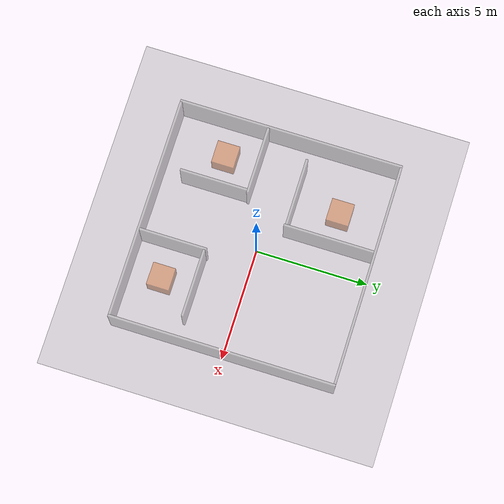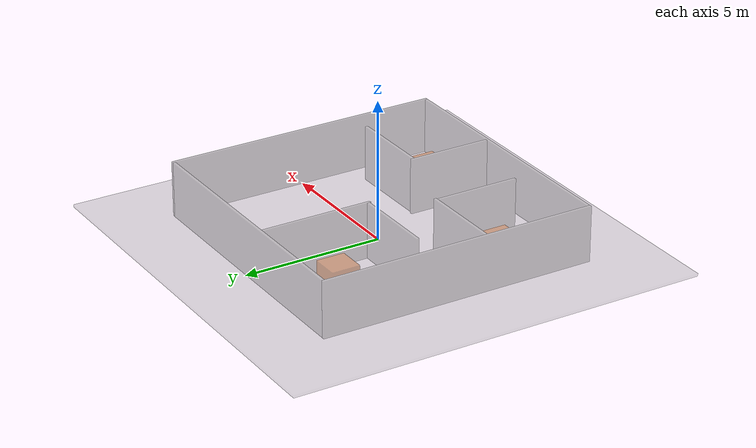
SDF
<?xml version="1.0" ?>
<sdf version="1.10">
  <world name="robot_haus">

    <gravity>0 0 -9.81</gravity>

    <light name="sun" type="directional">
      <pose>0 0 10 0 0 0</pose>
      <diffuse>1 1 1 1</diffuse>
      <specular>1 1 1 1</specular>
      <attenuation>
        <range>1000</range>
        <constant>0.5</constant>
        <linear>0.05</linear>
        <quadratic>0.002</quadratic>
      </attenuation>
    </light>
    <model name="floor">
      <pose>0 0 0 0 0 0</pose>
      <static>true</static>
      <link name="link">
        <collision name="collision">
          <geometry>
            <box>
              <size>15 15 0.1</size>
            </box>
          </geometry>
        </collision>
        <visual name="visual">
          <geometry>
            <box>
              <size>15 15 0.1</size>
            </box>
          </geometry>
          <material>
            <ambient>0.2 0.2 0.2 0.2</ambient>
            <diffuse>0.2 0.2 0.2 0.2</diffuse>
            <specular>0.2 0.2 0.2 0.1</specular>
          </material>
        </visual>
      </link>
    </model>

    <model name="wall1">
      <pose>4.95 0 1.05 0 0 0</pose>
      <link name="link">
        <collision name="collision">
          <geometry>
            <box>
              <size>0.1 10 2</size>
            </box>
          </geometry>
        </collision>
        <visual name="visual">
          <geometry>
            <box>
              <size>0.1 10 2</size>
            </box>
          </geometry>
          <material>
            <ambient>0.5 0.5 0.5 0.5</ambient>
            <diffuse>0.5 0.5 0.5 0.5</diffuse>
            <specular>0.2 0.2 0.2 0.5</specular>
          </material>
        </visual>
      </link>
    </model>

    <model name="wall2">
      <pose>-4.95 0 1.05 0 0 0</pose>
      <link name="link">
        <collision name="collision">
          <geometry>
            <box>
              <size>0.1 10 2</size>
            </box>
          </geometry>
        </collision>
        <visual name="visual">
          <geometry>
            <box>
              <size>0.1 10 2</size>
            </box>
          </geometry>
          <material>
            <ambient>0.5 0.5 0.5 0.5</ambient>
            <diffuse>0.5 0.5 0.5 0.5</diffuse>
            <specular>0.2 0.2 0.2 0.5</specular>
          </material>
        </visual>
      </link>
    </model>
    <model name="wall3">
      <pose>0 4.95 1.05 0 0 0</pose>
      <link name="link">
        <collision name="collision">
          <geometry>
            <box>
              <size>9.8 0.1 2</size>
            </box>
          </geometry>
        </collision>
        <visual name="visual">
          <geometry>
            <box>
              <size>9.8 0.1 2</size>
            </box>
          </geometry>
          <material>
            <ambient>0.5 0.5 0.5 0.5</ambient>
            <diffuse>0.5 0.5 0.5 0.5</diffuse>
            <specular>0.2 0.2 0.2 0.5</specular>
          </material>
        </visual>
      </link>
    </model>
    <model name="wall4">
      <pose>0 -4.95 1.05 0 0 0</pose>
      <link name="link">
        <collision name="collision">
          <geometry>
            <box>
              <size>9.8 0.1 2</size>
            </box>
          </geometry>
        </collision>
        <visual name="visual">
          <geometry>
            <box>
              <size>9.8 0.1 2</size>
            </box>
          </geometry>
          <material>
            <ambient>0.5 0.5 0.5 0.5</ambient>
            <diffuse>0.5 0.5 0.5 0.5</diffuse>
            <specular>0.2 0.2 0.2 0.5</specular>
          </material>
        </visual>
      </link>
    </model>
    <model name="wall5">
      <pose>-2.55 1 1.05 0 0 0</pose>
      <link name="link">
        <collision name="collision">
          <geometry>
            <box>
              <size>3 0.1 2</size>
            </box>
          </geometry>
        </collision>
        <visual name="visual">
          <geometry>
            <box>
              <size>3 0.1 2</size>
            </box>
          </geometry>
          <material>
            <ambient>0.5 0.5 0.5 0.5</ambient>
            <diffuse>0.5 0.5 0.5 0.5</diffuse>
            <specular>0.2 0.2 0.2 0.5</specular>
          </material>
        </visual>
      </link>
    </model>
    <model name="wall6">
      <pose>-1 2.90 1.05 0 0 0</pose>
      <link name="link">
        <collision name="collision">
          <geometry>
            <box>
              <size>0.1 4 2</size>
            </box>
          </geometry>
        </collision>
        <visual name="visual">
          <geometry>
            <box>
              <size>0.1 4 2</size>
            </box>
          </geometry>
          <material>
            <ambient>0.5 0.5 0.5 0.5</ambient>
            <diffuse>0.5 0.5 0.5 0.5</diffuse>
            <specular>0.2 0.2 0.2 0.5</specular>
          </material>
        </visual>
      </link>
    </model>
    <model name="wall7">
      <pose>-3.40 -1 1.05 0 0 0</pose>
      <link name="link">
        <collision name="collision">
          <geometry>
            <box>
              <size>3 0.1 2</size>
            </box>
          </geometry>
        </collision>
        <visual name="visual">
          <geometry>
            <box>
              <size>3 0.1 2</size>
            </box>
          </geometry>
          <material>
            <ambient>0.5 0.5 0.5 0.5</ambient>
            <diffuse>0.5 0.5 0.5 0.5</diffuse>
            <specular>0.2 0.2 0.2 0.5</specular>
          </material>
        </visual>
      </link>
    </model>
    <model name="wall8">
      <pose>-2 -2.55 1.05 0 0 0</pose>
      <link name="link">
        <collision name="collision">
          <geometry>
            <box>
              <size>0.1 3 2</size>
            </box>
          </geometry>
        </collision>
        <visual name="visual">
          <geometry>
            <box>
              <size>0.1 3 2</size>
            </box>
          </geometry>
          <material>
            <ambient>0.5 0.5 0.5 0.5</ambient>
            <diffuse>0.5 0.5 0.5 0.5</diffuse>
            <specular>0.2 0.2 0.2 0.5</specular>
          </material>
        </visual>
      </link>
    </model>
    <model name="wall9">
      <pose>1 -3.40 1.05 0 0 0</pose>
      <link name="link">
        <collision name="collision">
          <geometry>
            <box>
              <size>0.1 3 2</size>
            </box>
          </geometry>
        </collision>
        <visual name="visual">
          <geometry>
            <box>
              <size>0.1 3 2</size>
            </box>
          </geometry>
          <material>
            <ambient>0.5 0.5 0.5 0.5</ambient>
            <diffuse>0.5 0.5 0.5 0.5</diffuse>
            <specular>0.2 0.2 0.2 0.5</specular>
          </material>
        </visual>
      </link>
    </model>
    <model name="wall10">
     <static>true</static>
      <pose>2.55 -2 1.05 0 0 0</pose>
      <link name="link">
        <collision name="collision">
          <geometry>
            <box>
              <size>3 0.1 2</size>
            </box>
          </geometry>
        </collision>
        <visual name="visual">
          <geometry>
            <box>
              <size>3 0.1 2</size>
            </box>
          </geometry>
          <material>
            <ambient>0.5 0.5 0.5 0.5</ambient>
            <diffuse>0.5 0.5 0.5 0.5</diffuse>
            <specular>0.2 0.2 0.2 0.5</specular>
          </material>
        </visual>
      </link>
    </model>

    <model name="obstacle1">
      <pose>-2.5 3 0.55 0 0 0</pose>
      <static>true</static>
      <link name="link">
        <collision name="collision">
          <geometry>
            <box>
              <size>1 1 1</size>
            </box>
          </geometry>
        </collision>
        <visual name="visual">
          <geometry>
            <box>
              <size>1 1 1</size>
            </box>
          </geometry>
          <material>
            <ambient>0.7 0.4 0.2 0.6</ambient>
            <diffuse>0.7 0.4 0.2 0.6</diffuse>
            <specular>0.2 0.1 0.05 0.3</specular>
          </material>
        </visual>
      </link>
    </model>

    <model name="obstacle2">
      <pose>-3.5 -2.5 0.55 0 0 0</pose>
      <static>true</static>
      <link name="link">
        <collision name="collision">
          <geometry>
            <box>
              <size>1 1 1</size>
            </box>
          </geometry>
        </collision>
        <visual name="visual">
          <geometry>
            <box>
              <size>1 1 1</size>
            </box>
          </geometry>
          <material>
            <ambient>0.7 0.4 0.2 0.6</ambient>
            <diffuse>0.7 0.4 0.2 0.6</diffuse>
            <specular>0.2 0.1 0.05 0.3</specular>
          </material>
        </visual>
      </link>
    </model>

    <model name="obstacle3">
      <pose>2.5 -3.5 0.55 0 0 0</pose>
      <static>true</static>
      <link name="link">
        <collision name="collision">
          <geometry>
            <box>
              <size>1 1 1</size>
            </box>
          </geometry>
        </collision>
        <visual name="visual">
          <geometry>
            <box>
              <size>1 1 1</size>
            </box>
          </geometry>
          <material>
            <ambient>0.7 0.4 0.2 0.6</ambient>
            <diffuse>0.7 0.4 0.2 0.6</diffuse>
            <specular>0.2 0.1 0.05 0.3</specular>
          </material>
        </visual>
      </link>
    </model>
  </world>
</sdf>
